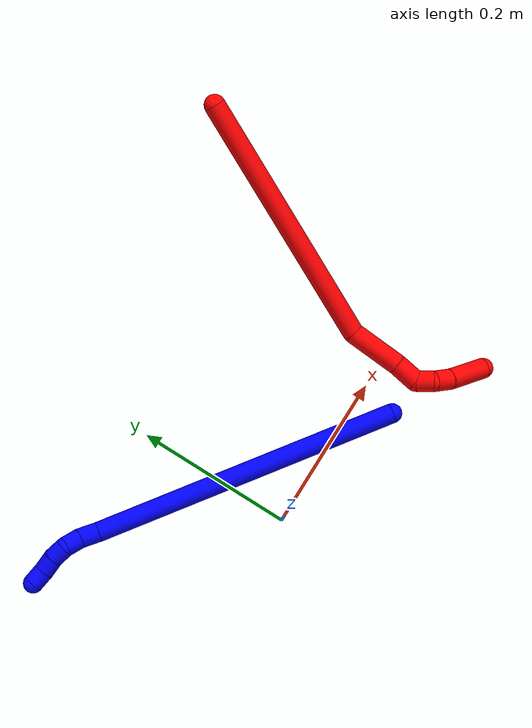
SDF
<sdf version="1.7">
 <world name="default">
  <plugin name="TubeGeneratorPlugin" filename="libtube_generator_plugin.so"/>
  <model name="photoneo_s_sensor">
   <static>1</static>
   <pose>0 0 2 1.57079 1.57079 3.14159</pose>
   <link name="link">
    <inertial><mass>0.1</mass></inertial>
    <sensor name="sensor" type="depth">
     <update_rate>30</update_rate>
     <camera>
      <horizontal_fov>1.22</horizontal_fov>
      <image><width>1920</width><height>1200</height><format>B8G8R8</format></image>
      <clip><near>0.1</near><far>4</far></clip>
      <depth_camera><output>points</output></depth_camera>
     </camera>
     <plugin name="camera_plugin" filename="libgazebo_ros_depth_camera.so">
      <baseline>0.2</baseline>
      <alwaysOn>1</alwaysOn>
      <updateRate>0.0</updateRate>
      <cameraName>camera_ir</cameraName>
      <imageTopicName>/camera/color/image_raw</imageTopicName>
      <cameraInfoTopicName>/camera/color/camera_info</cameraInfoTopicName>
      <depthImageTopicName>/camera/depth/image_raw</depthImageTopicName>
      <depthImageCameraInfoTopicName>/camera/depth/camera_info</depthImageCameraInfoTopicName>
      <pointCloudTopicName>/camera/depth/points</pointCloudTopicName>
      <frameName>fr_optical</frameName>
      <pointCloudCutoff>0.1</pointCloudCutoff>
      <pointCloudCutoffMax>2.0</pointCloudCutoffMax>
      <distortionK1>0</distortionK1>
      <distortionK2>0</distortionK2>
      <distortionK3>0</distortionK3>
      <distortionT1>0</distortionT1>
      <distortionT2>0</distortionT2>
      <CxPrime>0</CxPrime>
      <Cx>0</Cx>
      <Cy>0</Cy>
      <focalLength>0</focalLength>
      <hackBaseline>0</hackBaseline>
     </plugin>
    </sensor>
   </link>
  </model>
  <gravity>0 0 -9.8</gravity>
  <magnetic_field>6e-06 2.3e-05 -4.2e-05</magnetic_field>
  <atmosphere type="adiabatic"/>
  <physics name="default_physics" default="0" type="ode">
   <max_step_size>0.003</max_step_size>
   <real_time_factor>1</real_time_factor>
   <real_time_update_rate>1000</real_time_update_rate>
   <max_contacts>10000</max_contacts>
   <ode>
    <solver>
     <type>quick</type>
     <iters>100</iters>
     <sor>1.3</sor>
     <use_dynamic_moi_rescaling>0</use_dynamic_moi_rescaling>
    </solver>
    <constraints>
     <contact_max_correcting_vel>0</contact_max_correcting_vel>
     <contact_surface_layer>0.001</contact_surface_layer>
     <cfm>0</cfm>
     <erp>0.2</erp>
    </constraints>
   </ode>
  </physics>
  <scene><ambient>0.4 0.4 0.4 1</ambient><background>0.7 0.7 0.7 1</background><shadows>0</shadows></scene>
  <audio><device>default</device></audio>
  <spherical_coordinates>
   <surface_model>EARTH_WGS84</surface_model>
   <latitude_deg>0</latitude_deg>
   <longitude_deg>0</longitude_deg>
   <elevation>0</elevation>
   <heading_deg>0</heading_deg>
  </spherical_coordinates>
  <model name="bin">
   <static>1</static>
   <link name="bottom">
    <collision name="collision-bottom">
     <pose>0 0 -0.01 0 -0 0</pose>
     <geometry><box><size>0.8 0.6 0.02</size></box></geometry>
     <surface>
      <friction><ode><mu>100</mu><mu2>100</mu2></ode></friction>
      <contact><collide_bitmask>65535</collide_bitmask></contact>
     </surface>
    </collision>
   </link>
   <link name="west_wall">
    <collision name="collision-west_wall">
     <pose>-0.41 0 0.1 0 -0 0</pose>
     <geometry><box><size>0.02 0.6 0.2</size></box></geometry>
     <surface>
      <friction><ode><mu>100</mu><mu2>100</mu2></ode></friction>
      <contact><collide_bitmask>65535</collide_bitmask></contact>
     </surface>
    </collision>
   </link>
   <link name="east_wall">
    <collision name="collision-east_wall">
     <pose>0.41 0 0.1 0 -0 0</pose>
     <geometry><box><size>0.02 0.6 0.2</size></box></geometry>
     <surface>
      <friction><ode><mu>100</mu><mu2>100</mu2></ode></friction>
      <contact><collide_bitmask>65535</collide_bitmask></contact>
     </surface>
    </collision>
   </link>
   <link name="south_wall">
    <collision name="collision-south_wall">
     <pose>0 -0.31 0.1 0 -0 0</pose>
     <geometry><box><size>0.8 0.02 0.2</size></box></geometry>
     <surface>
      <friction><ode><mu>100</mu><mu2>100</mu2></ode></friction>
      <contact><collide_bitmask>65535</collide_bitmask></contact>
     </surface>
    </collision>
   </link>
   <link name="north_wall">
    <collision name="collision-north_wall">
     <pose>0 0.31 0.1 0 -0 0</pose>
     <geometry><box><size>0.8 0.02 0.2</size></box></geometry>
     <surface>
      <friction><ode><mu>100</mu><mu2>100</mu2></ode></friction>
      <contact><collide_bitmask>65535</collide_bitmask></contact>
     </surface>
    </collision>
   </link>
  </model>
  <model name="1">
   <static>0</static>
   <link name="1">
    <collision name="collision-cylinder-e_1_1_4">
     <pose>-0.133909 0.091632 0.111353 -0.688548 -0.748382 0.279763</pose>
     <geometry><cylinder><radius>0.0125</radius><length>0.393586</length></cylinder></geometry>
     <surface>
      <friction><ode><mu>1.16</mu><mu2>1.16</mu2><slip1>0</slip1><slip2>0</slip2></ode></friction>
      <contact><ode><kp>1e+06</kp><kd>1</kd><max_vel>0</max_vel><min_depth>0.001</min_depth></ode></contact>
     </surface>
    </collision>
    <visual name="visual-cylinder-e_1_1_4">
     <pose>-0.133909 0.091632 0.111353 -0.688548 -0.748382 0.279763</pose>
     <geometry><cylinder><radius>0.0125</radius><length>0.393586</length></cylinder></geometry>
     <material><ambient>0 0 1 1</ambient></material>
    </visual>
    <collision name="collision-cylinder-e_2_4_5">
     <pose>-0.276358 0.187198 0.230627 -0.460878 -0.767948 0.189011</pose>
     <geometry><cylinder><radius>0.0125</radius><length>0.024588</length></cylinder></geometry>
     <surface>
      <friction><ode><mu>1.16</mu><mu2>1.16</mu2><slip1>0</slip1><slip2>0</slip2></ode></friction>
      <contact><ode><kp>1e+06</kp><kd>1</kd><max_vel>0</max_vel><min_depth>0.001</min_depth></ode></contact>
     </surface>
    </collision>
    <visual name="visual-cylinder-e_2_4_5">
     <pose>-0.276358 0.187198 0.230627 -0.460878 -0.767948 0.189011</pose>
     <geometry><cylinder><radius>0.0125</radius><length>0.024588</length></cylinder></geometry>
     <material><ambient>0 0 1 1</ambient></material>
    </visual>
    <collision name="collision-cylinder-e_3_5_6">
     <pose>-0.293695 0.192669 0.244007 -0.274743 -0.9981 0.150419</pose>
     <geometry><cylinder><radius>0.0125</radius><length>0.020934</length></cylinder></geometry>
     <surface>
      <friction><ode><mu>1.16</mu><mu2>1.16</mu2><slip1>0</slip1><slip2>0</slip2></ode></friction>
      <contact><ode><kp>1e+06</kp><kd>1</kd><max_vel>0</max_vel><min_depth>0.001</min_depth></ode></contact>
     </surface>
    </collision>
    <visual name="visual-cylinder-e_3_5_6">
     <pose>-0.293695 0.192669 0.244007 -0.274743 -0.9981 0.150419</pose>
     <geometry><cylinder><radius>0.0125</radius><length>0.020934</length></cylinder></geometry>
     <material><ambient>0 0 1 1</ambient></material>
    </visual>
    <collision name="collision-cylinder-e_4_6_7">
     <pose>-0.310449 0.200327 0.251538 -1.24437 -0.888869 0.658245</pose>
     <geometry><cylinder><radius>0.0125</radius><length>0.020498</length></cylinder></geometry>
     <surface>
      <friction><ode><mu>1.16</mu><mu2>1.16</mu2><slip1>0</slip1><slip2>0</slip2></ode></friction>
      <contact><ode><kp>1e+06</kp><kd>1</kd><max_vel>0</max_vel><min_depth>0.001</min_depth></ode></contact>
     </surface>
    </collision>
    <visual name="visual-cylinder-e_4_6_7">
     <pose>-0.310449 0.200327 0.251538 -1.24437 -0.888869 0.658245</pose>
     <geometry><cylinder><radius>0.0125</radius><length>0.020498</length></cylinder></geometry>
     <material><ambient>0 0 1 1</ambient></material>
    </visual>
    <collision name="collision-cylinder-e_5_7_8">
     <pose>-0.326804 0.212163 0.253723 -1.55097 -0.972962 0.956666</pose>
     <geometry><cylinder><radius>0.0125</radius><length>0.02032</length></cylinder></geometry>
     <surface>
      <friction><ode><mu>1.16</mu><mu2>1.16</mu2><slip1>0</slip1><slip2>0</slip2></ode></friction>
      <contact><ode><kp>1e+06</kp><kd>1</kd><max_vel>0</max_vel><min_depth>0.001</min_depth></ode></contact>
     </surface>
    </collision>
    <visual name="visual-cylinder-e_5_7_8">
     <pose>-0.326804 0.212163 0.253723 -1.55097 -0.972962 0.956666</pose>
     <geometry><cylinder><radius>0.0125</radius><length>0.02032</length></cylinder></geometry>
     <material><ambient>0 0 1 1</ambient></material>
    </visual>
    <collision name="collision-cylinder-e_6_8_2">
     <pose>-0.344085 0.222332 0.255248 -1.26367 -1.08683 0.832603</pose>
     <geometry><cylinder><radius>0.0125</radius><length>0.020073</length></cylinder></geometry>
     <surface>
      <friction><ode><mu>1.16</mu><mu2>1.16</mu2><slip1>0</slip1><slip2>0</slip2></ode></friction>
      <contact><ode><kp>1e+06</kp><kd>1</kd><max_vel>0</max_vel><min_depth>0.001</min_depth></ode></contact>
     </surface>
    </collision>
    <visual name="visual-cylinder-e_6_8_2">
     <pose>-0.344085 0.222332 0.255248 -1.26367 -1.08683 0.832603</pose>
     <geometry><cylinder><radius>0.0125</radius><length>0.020073</length></cylinder></geometry>
     <material><ambient>0 0 1 1</ambient></material>
    </visual>
    <collision name="collision-sphere-2">
     <pose>-0.352969 0.226784 0.25666 0 -0 0</pose>
     <geometry><sphere><radius>0.0125</radius></sphere></geometry>
     <surface>
      <friction><ode><mu>1.16</mu><mu2>1.16</mu2><slip1>0</slip1><slip2>0</slip2></ode></friction>
      <contact><ode><kp>1e+06</kp><kd>1</kd><max_vel>0</max_vel><min_depth>0.001</min_depth></ode></contact>
     </surface>
    </collision>
    <visual name="visual-sphere-2">
     <pose>-0.352969 0.226784 0.25666 0 -0 0</pose>
     <geometry><sphere><radius>0.0125</radius></sphere></geometry>
     <material><ambient>0 0 1 1</ambient></material>
    </visual>
    <collision name="collision-sphere-4">
     <pose>-0.267818 0.183265 0.222707 0 -0 0</pose>
     <geometry><sphere><radius>0.0125</radius></sphere></geometry>
     <surface>
      <friction><ode><mu>1.16</mu><mu2>1.16</mu2><slip1>0</slip1><slip2>0</slip2></ode></friction>
      <contact><ode><kp>1e+06</kp><kd>1</kd><max_vel>0</max_vel><min_depth>0.001</min_depth></ode></contact>
     </surface>
    </collision>
    <visual name="visual-sphere-4">
     <pose>-0.267818 0.183265 0.222707 0 -0 0</pose>
     <geometry><sphere><radius>0.0125</radius></sphere></geometry>
     <material><ambient>0 0 1 1</ambient></material>
    </visual>
    <collision name="collision-sphere-1">
     <geometry><sphere><radius>0.0125</radius></sphere></geometry>
     <surface>
      <friction><ode><mu>1.16</mu><mu2>1.16</mu2><slip1>0</slip1><slip2>0</slip2></ode></friction>
      <contact><ode><kp>1e+06</kp><kd>1</kd><max_vel>0</max_vel><min_depth>0.001</min_depth></ode></contact>
     </surface>
    </collision>
    <visual name="visual-sphere-1">
     <geometry><sphere><radius>0.0125</radius></sphere></geometry>
     <material><ambient>0 0 1 1</ambient></material>
    </visual>
    <collision name="collision-sphere-8">
     <pose>-0.335202 0.217881 0.253836 0 -0 0</pose>
     <geometry><sphere><radius>0.0125</radius></sphere></geometry>
     <surface>
      <friction><ode><mu>1.16</mu><mu2>1.16</mu2><slip1>0</slip1><slip2>0</slip2></ode></friction>
      <contact><ode><kp>1e+06</kp><kd>1</kd><max_vel>0</max_vel><min_depth>0.001</min_depth></ode></contact>
     </surface>
    </collision>
    <visual name="visual-sphere-8">
     <pose>-0.335202 0.217881 0.253836 0 -0 0</pose>
     <geometry><sphere><radius>0.0125</radius></sphere></geometry>
     <material><ambient>0 0 1 1</ambient></material>
    </visual>
    <collision name="collision-sphere-5">
     <pose>-0.284898 0.191131 0.238548 0 -0 0</pose>
     <geometry><sphere><radius>0.0125</radius></sphere></geometry>
     <surface>
      <friction><ode><mu>1.16</mu><mu2>1.16</mu2><slip1>0</slip1><slip2>0</slip2></ode></friction>
      <contact><ode><kp>1e+06</kp><kd>1</kd><max_vel>0</max_vel><min_depth>0.001</min_depth></ode></contact>
     </surface>
    </collision>
    <visual name="visual-sphere-5">
     <pose>-0.284898 0.191131 0.238548 0 -0 0</pose>
     <geometry><sphere><radius>0.0125</radius></sphere></geometry>
     <material><ambient>0 0 1 1</ambient></material>
    </visual>
    <collision name="collision-sphere-6">
     <pose>-0.302492 0.194208 0.249467 0 -0 0</pose>
     <geometry><sphere><radius>0.0125</radius></sphere></geometry>
     <surface>
      <friction><ode><mu>1.16</mu><mu2>1.16</mu2><slip1>0</slip1><slip2>0</slip2></ode></friction>
      <contact><ode><kp>1e+06</kp><kd>1</kd><max_vel>0</max_vel><min_depth>0.001</min_depth></ode></contact>
     </surface>
    </collision>
    <visual name="visual-sphere-6">
     <pose>-0.302492 0.194208 0.249467 0 -0 0</pose>
     <geometry><sphere><radius>0.0125</radius></sphere></geometry>
     <material><ambient>0 0 1 1</ambient></material>
    </visual>
    <collision name="collision-sphere-7">
     <pose>-0.318406 0.206446 0.25361 0 -0 0</pose>
     <geometry><sphere><radius>0.0125</radius></sphere></geometry>
     <surface>
      <friction><ode><mu>1.16</mu><mu2>1.16</mu2><slip1>0</slip1><slip2>0</slip2></ode></friction>
      <contact><ode><kp>1e+06</kp><kd>1</kd><max_vel>0</max_vel><min_depth>0.001</min_depth></ode></contact>
     </surface>
    </collision>
    <visual name="visual-sphere-7">
     <pose>-0.318406 0.206446 0.25361 0 -0 0</pose>
     <geometry><sphere><radius>0.0125</radius></sphere></geometry>
     <material><ambient>0 0 1 1</ambient></material>
    </visual>
    <inertial>
     <pose>-0.171118 0.115164 0.140083 0 -0 0</pose>
     <mass>0.5</mass>
     <inertia>
      <ixx>0.004599</ixx>
      <ixy>0</ixy>
      <ixz>0</ixz>
      <iyy>0.005449</iyy>
      <iyz>0</iyz>
      <izz>0.001118</izz>
     </inertia>
    </inertial>
   </link>
   <pose>0.186702 -0.04619 0.01195 -1.1882 0.314627 0.1497</pose>
  </model>
  <model name="2">
   <static>0</static>
   <link name="2">
    <collision name="collision-cylinder-e_1_1_4">
     <pose>0.082392 -0.052626 -0.121721 2.73351 0.555943 1.88681</pose>
     <geometry><cylinder><radius>0.0125</radius><length>0.312243</length></cylinder></geometry>
     <surface>
      <friction><ode><mu>1.16</mu><mu2>1.16</mu2><slip1>0</slip1><slip2>0</slip2></ode></friction>
      <contact><ode><kp>1e+06</kp><kd>1</kd><max_vel>0</max_vel><min_depth>0.001</min_depth></ode></contact>
     </surface>
    </collision>
    <visual name="visual-cylinder-e_1_1_4">
     <pose>0.082392 -0.052626 -0.121721 2.73351 0.555943 1.88681</pose>
     <geometry><cylinder><radius>0.0125</radius><length>0.312243</length></cylinder></geometry>
     <material><ambient>1 0 0 1</ambient></material>
    </visual>
    <collision name="collision-cylinder-e_2_4_5">
     <pose>0.167655 -0.118561 -0.272652 2.71407 0.089183 0.405465</pose>
     <geometry><cylinder><radius>0.0125</radius><length>0.064454</length></cylinder></geometry>
     <surface>
      <friction><ode><mu>1.16</mu><mu2>1.16</mu2><slip1>0</slip1><slip2>0</slip2></ode></friction>
      <contact><ode><kp>1e+06</kp><kd>1</kd><max_vel>0</max_vel><min_depth>0.001</min_depth></ode></contact>
     </surface>
    </collision>
    <visual name="visual-cylinder-e_2_4_5">
     <pose>0.167655 -0.118561 -0.272652 2.71407 0.089183 0.405465</pose>
     <geometry><cylinder><radius>0.0125</radius><length>0.064454</length></cylinder></geometry>
     <material><ambient>1 0 0 1</ambient></material>
    </visual>
    <collision name="collision-cylinder-e_3_5_6">
     <pose>0.173462 -0.137575 -0.315024 2.73261 0.201917 0.908754</pose>
     <geometry><cylinder><radius>0.0125</radius><length>0.029285</length></cylinder></geometry>
     <surface>
      <friction><ode><mu>1.16</mu><mu2>1.16</mu2><slip1>0</slip1><slip2>0</slip2></ode></friction>
      <contact><ode><kp>1e+06</kp><kd>1</kd><max_vel>0</max_vel><min_depth>0.001</min_depth></ode></contact>
     </surface>
    </collision>
    <visual name="visual-cylinder-e_3_5_6">
     <pose>0.173462 -0.137575 -0.315024 2.73261 0.201917 0.908754</pose>
     <geometry><cylinder><radius>0.0125</radius><length>0.029285</length></cylinder></geometry>
     <material><ambient>1 0 0 1</ambient></material>
    </visual>
    <collision name="collision-cylinder-e_4_6_7">
     <pose>0.172052 -0.150292 -0.33498 2.34044 -0.41879 -0.930215</pose>
     <geometry><cylinder><radius>0.0125</radius><length>0.021376</length></cylinder></geometry>
     <surface>
      <friction><ode><mu>1.16</mu><mu2>1.16</mu2><slip1>0</slip1><slip2>0</slip2></ode></friction>
      <contact><ode><kp>1e+06</kp><kd>1</kd><max_vel>0</max_vel><min_depth>0.001</min_depth></ode></contact>
     </surface>
    </collision>
    <visual name="visual-cylinder-e_4_6_7">
     <pose>0.172052 -0.150292 -0.33498 2.34044 -0.41879 -0.930215</pose>
     <geometry><cylinder><radius>0.0125</radius><length>0.021376</length></cylinder></geometry>
     <material><ambient>1 0 0 1</ambient></material>
    </visual>
    <collision name="collision-cylinder-e_5_7_8">
     <pose>0.166176 -0.167698 -0.345163 1.88588 -0.139 -0.191227</pose>
     <geometry><cylinder><radius>0.0125</radius><length>0.022077</length></cylinder></geometry>
     <surface>
      <friction><ode><mu>1.16</mu><mu2>1.16</mu2><slip1>0</slip1><slip2>0</slip2></ode></friction>
      <contact><ode><kp>1e+06</kp><kd>1</kd><max_vel>0</max_vel><min_depth>0.001</min_depth></ode></contact>
     </surface>
    </collision>
    <visual name="visual-cylinder-e_5_7_8">
     <pose>0.166176 -0.167698 -0.345163 1.88588 -0.139 -0.191227</pose>
     <geometry><cylinder><radius>0.0125</radius><length>0.022077</length></cylinder></geometry>
     <material><ambient>1 0 0 1</ambient></material>
    </visual>
    <collision name="collision-cylinder-e_6_8_2">
     <pose>0.159594 -0.202595 -0.352189 1.71821 -0.201201 -0.233013</pose>
     <geometry><cylinder><radius>0.0125</radius><length>0.050565</length></cylinder></geometry>
     <surface>
      <friction><ode><mu>1.16</mu><mu2>1.16</mu2><slip1>0</slip1><slip2>0</slip2></ode></friction>
      <contact><ode><kp>1e+06</kp><kd>1</kd><max_vel>0</max_vel><min_depth>0.001</min_depth></ode></contact>
     </surface>
    </collision>
    <visual name="visual-cylinder-e_6_8_2">
     <pose>0.159594 -0.202595 -0.352189 1.71821 -0.201201 -0.233013</pose>
     <geometry><cylinder><radius>0.0125</radius><length>0.050565</length></cylinder></geometry>
     <material><ambient>1 0 0 1</ambient></material>
    </visual>
    <collision name="collision-sphere-2">
     <pose>0.154542 -0.227099 -0.355828 0 -0 0</pose>
     <geometry><sphere><radius>0.0125</radius></sphere></geometry>
     <surface>
      <friction><ode><mu>1.16</mu><mu2>1.16</mu2><slip1>0</slip1><slip2>0</slip2></ode></friction>
      <contact><ode><kp>1e+06</kp><kd>1</kd><max_vel>0</max_vel><min_depth>0.001</min_depth></ode></contact>
     </surface>
    </collision>
    <visual name="visual-sphere-2">
     <pose>0.154542 -0.227099 -0.355828 0 -0 0</pose>
     <geometry><sphere><radius>0.0125</radius></sphere></geometry>
     <material><ambient>1 0 0 1</ambient></material>
    </visual>
    <collision name="collision-sphere-4">
     <pose>0.164785 -0.105253 -0.243442 0 -0 0</pose>
     <geometry><sphere><radius>0.0125</radius></sphere></geometry>
     <surface>
      <friction><ode><mu>1.16</mu><mu2>1.16</mu2><slip1>0</slip1><slip2>0</slip2></ode></friction>
      <contact><ode><kp>1e+06</kp><kd>1</kd><max_vel>0</max_vel><min_depth>0.001</min_depth></ode></contact>
     </surface>
    </collision>
    <visual name="visual-sphere-4">
     <pose>0.164785 -0.105253 -0.243442 0 -0 0</pose>
     <geometry><sphere><radius>0.0125</radius></sphere></geometry>
     <material><ambient>1 0 0 1</ambient></material>
    </visual>
    <collision name="collision-sphere-1">
     <geometry><sphere><radius>0.0125</radius></sphere></geometry>
     <surface>
      <friction><ode><mu>1.16</mu><mu2>1.16</mu2><slip1>0</slip1><slip2>0</slip2></ode></friction>
      <contact><ode><kp>1e+06</kp><kd>1</kd><max_vel>0</max_vel><min_depth>0.001</min_depth></ode></contact>
     </surface>
    </collision>
    <visual name="visual-sphere-1">
     <geometry><sphere><radius>0.0125</radius></sphere></geometry>
     <material><ambient>1 0 0 1</ambient></material>
    </visual>
    <collision name="collision-sphere-8">
     <pose>0.164647 -0.178092 -0.348551 0 -0 0</pose>
     <geometry><sphere><radius>0.0125</radius></sphere></geometry>
     <surface>
      <friction><ode><mu>1.16</mu><mu2>1.16</mu2><slip1>0</slip1><slip2>0</slip2></ode></friction>
      <contact><ode><kp>1e+06</kp><kd>1</kd><max_vel>0</max_vel><min_depth>0.001</min_depth></ode></contact>
     </surface>
    </collision>
    <visual name="visual-sphere-8">
     <pose>0.164647 -0.178092 -0.348551 0 -0 0</pose>
     <geometry><sphere><radius>0.0125</radius></sphere></geometry>
     <material><ambient>1 0 0 1</ambient></material>
    </visual>
    <collision name="collision-sphere-5">
     <pose>0.170525 -0.13187 -0.301862 0 -0 0</pose>
     <geometry><sphere><radius>0.0125</radius></sphere></geometry>
     <surface>
      <friction><ode><mu>1.16</mu><mu2>1.16</mu2><slip1>0</slip1><slip2>0</slip2></ode></friction>
      <contact><ode><kp>1e+06</kp><kd>1</kd><max_vel>0</max_vel><min_depth>0.001</min_depth></ode></contact>
     </surface>
    </collision>
    <visual name="visual-sphere-5">
     <pose>0.170525 -0.13187 -0.301862 0 -0 0</pose>
     <geometry><sphere><radius>0.0125</radius></sphere></geometry>
     <material><ambient>1 0 0 1</ambient></material>
    </visual>
    <collision name="collision-sphere-6">
     <pose>0.176398 -0.143279 -0.328185 0 -0 0</pose>
     <geometry><sphere><radius>0.0125</radius></sphere></geometry>
     <surface>
      <friction><ode><mu>1.16</mu><mu2>1.16</mu2><slip1>0</slip1><slip2>0</slip2></ode></friction>
      <contact><ode><kp>1e+06</kp><kd>1</kd><max_vel>0</max_vel><min_depth>0.001</min_depth></ode></contact>
     </surface>
    </collision>
    <visual name="visual-sphere-6">
     <pose>0.176398 -0.143279 -0.328185 0 -0 0</pose>
     <geometry><sphere><radius>0.0125</radius></sphere></geometry>
     <material><ambient>1 0 0 1</ambient></material>
    </visual>
    <collision name="collision-sphere-7">
     <pose>0.167705 -0.157304 -0.341775 0 -0 0</pose>
     <geometry><sphere><radius>0.0125</radius></sphere></geometry>
     <surface>
      <friction><ode><mu>1.16</mu><mu2>1.16</mu2><slip1>0</slip1><slip2>0</slip2></ode></friction>
      <contact><ode><kp>1e+06</kp><kd>1</kd><max_vel>0</max_vel><min_depth>0.001</min_depth></ode></contact>
     </surface>
    </collision>
    <visual name="visual-sphere-7">
     <pose>0.167705 -0.157304 -0.341775 0 -0 0</pose>
     <geometry><sphere><radius>0.0125</radius></sphere></geometry>
     <material><ambient>1 0 0 1</ambient></material>
    </visual>
    <inertial>
     <pose>0.114057 -0.090524 -0.194789 0 -0 0</pose>
     <mass>0.5</mass>
     <inertia>
      <ixx>0.001444</ixx>
      <ixy>0</ixy>
      <ixz>0</ixz>
      <iyy>0.003259</iyy>
      <iyz>0</iyz>
      <izz>-0.000487</izz>
     </inertia>
    </inertial>
   </link>
   <pose>0.349162 0.313127 0.217758 2.04007 0.805518 -3.11776</pose>
  </model>
 </world>
</sdf>
